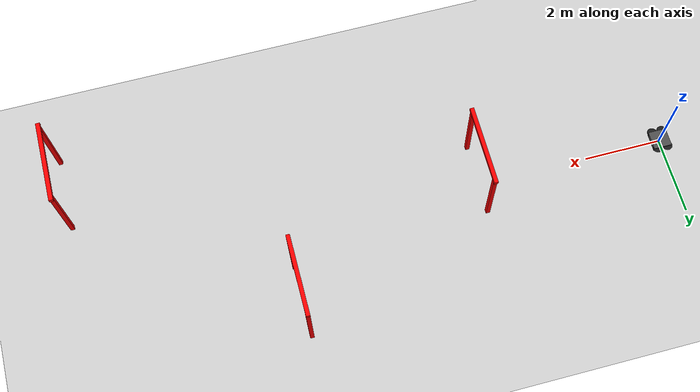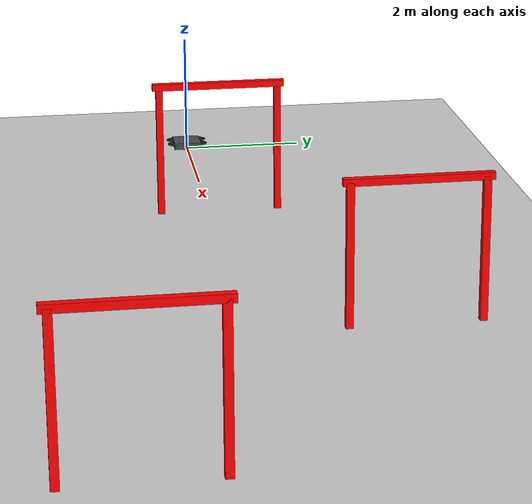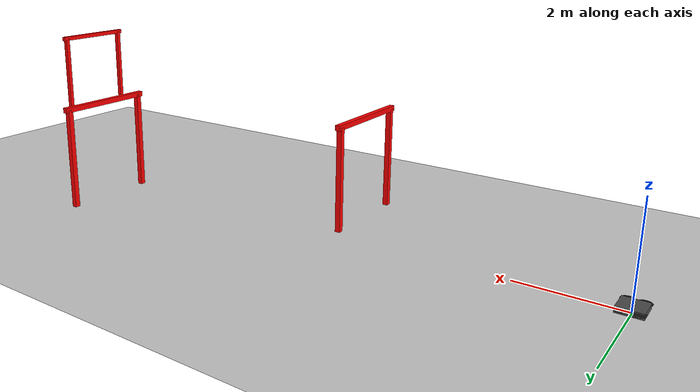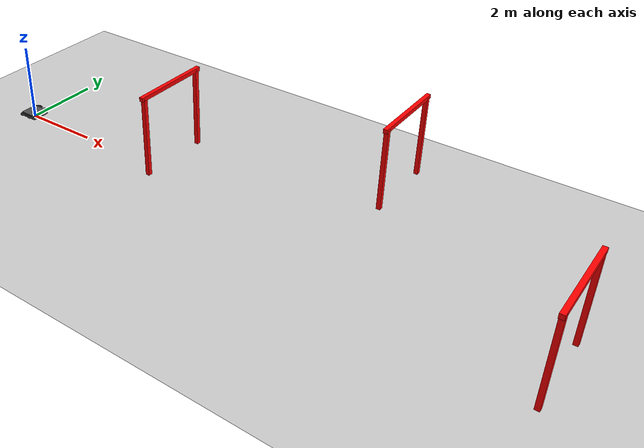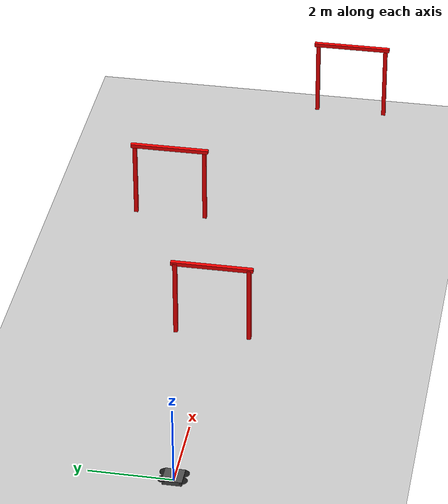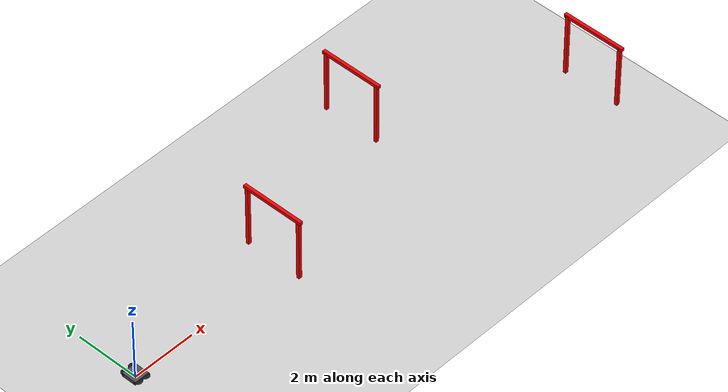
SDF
<?xml version="1.0" ?>
<sdf version="1.9">
  <world name="our_world">

    <physics name="1ms" type="ignored">
      <max_step_size>0.001</max_step_size>
      <real_time_factor>1.0</real_time_factor>
    </physics>

    <plugin filename="gz-sim-physics-system"
            name="gz::sim::systems::Physics"/>
    <plugin filename="gz-sim-scene-broadcaster-system"
            name="gz::sim::systems::SceneBroadcaster"/>
    <plugin filename="gz-sim-user-commands-system"
            name="gz::sim::systems::UserCommands"/>
    <plugin filename="gz-sim-sensors-system"
            name="gz::sim::systems::Sensors">
      <render_engine>ogre2</render_engine>
    </plugin>
    <plugin filename="gz-sim-imu-system"
            name="gz::sim::systems::Imu">
    </plugin>
    <plugin filename="gz-sim-altimeter-system"
            name="gz::sim::systems::Altimeter">
    </plugin>

    <light type="directional" name="sun">
      <pose>0 0 10 0 0 0</pose>
      <diffuse>0.8 0.8 0.8 1</diffuse>
      <specular>0.2 0.2 0.2 1</specular>
      <direction>-0.5 0.1 -0.9</direction>
    </light>

    <model name="ground_plane">
      <static>true</static>
      <link name="link">
        <collision name="collision">
          <geometry>
            <plane><normal>0 0 1</normal><size>100 100</size></plane>
          </geometry>
        </collision>
        <visual name="visual">
          <geometry>
            <plane><normal>0 0 1</normal><size>100 100</size></plane>
          </geometry>
          <material><ambient>0.8 0.8 0.8 1</ambient></material>
        </visual>
      </link>
    </model>

    <!-- Our Custom Drone -->
    <include>
    <uri>file:///home/docuhub/ROS_HACK/drone_urdf/drone.sdf</uri>
      <pose>0 0 0.1 0 0 0</pose>
    </include>

    <!-- Gate 1 - straight ahead -->
    <model name="gate_1">
      <static>true</static>
      <pose>5 0 1.5 0 0 0</pose>
      <link name="link">
        <visual name="left_post">
          <pose>0 0.9 0 0 0 0</pose>
          <geometry><box><size>0.1 0.1 2.0</size></box></geometry>
          <material><ambient>1 0 0 1</ambient></material>
        </visual>
        <visual name="right_post">
          <pose>0 -0.9 0 0 0 0</pose>
          <geometry><box><size>0.1 0.1 2.0</size></box></geometry>
          <material><ambient>1 0 0 1</ambient></material>
        </visual>
        <visual name="top_bar">
          <pose>0 0 1.0 0 0 0</pose>
          <geometry><box><size>0.1 2.0 0.1</size></box></geometry>
          <material><ambient>1 0 0 1</ambient></material>
        </visual>
        <collision name="collision">
          <geometry><box><size>0.1 2.0 2.0</size></box></geometry>
        </collision>
      </link>
    </model>

    <!-- Gate 2 - slightly right -->
    <model name="gate_2">
      <static>true</static>
      <pose>10 2 1.5 0 0 0</pose>
      <link name="link">
        <visual name="left_post">
          <pose>0 0.9 0 0 0 0</pose>
          <geometry><box><size>0.1 0.1 2.0</size></box></geometry>
          <material><ambient>1 0 0 1</ambient></material>
        </visual>
        <visual name="right_post">
          <pose>0 -0.9 0 0 0 0</pose>
          <geometry><box><size>0.1 0.1 2.0</size></box></geometry>
          <material><ambient>1 0 0 1</ambient></material>
        </visual>
        <visual name="top_bar">
          <pose>0 0 1.0 0 0 0</pose>
          <geometry><box><size>0.1 2.0 0.1</size></box></geometry>
          <material><ambient>1 0 0 1</ambient></material>
        </visual>
        <collision name="collision">
          <geometry><box><size>0.1 2.0 2.0</size></box></geometry>
        </collision>
      </link>
    </model>

    <!-- Gate 3 - slightly left and higher -->
    <model name="gate_3">
      <static>true</static>
      <pose>15 -2 2.0 0 0 0</pose>
      <link name="link">
        <visual name="left_post">
          <pose>0 0.9 0 0 0 0</pose>
          <geometry><box><size>0.1 0.1 2.0</size></box></geometry>
          <material><ambient>1 0 0 1</ambient></material>
        </visual>
        <visual name="right_post">
          <pose>0 -0.9 0 0 0 0</pose>
          <geometry><box><size>0.1 0.1 2.0</size></box></geometry>
          <material><ambient>1 0 0 1</ambient></material>
        </visual>
        <visual name="top_bar">
          <pose>0 0 1.0 0 0 0</pose>
          <geometry><box><size>0.1 2.0 0.1</size></box></geometry>
          <material><ambient>1 0 0 1</ambient></material>
        </visual>
        <collision name="collision">
          <geometry><box><size>0.1 2.0 2.0</size></box></geometry>
        </collision>
      </link>
    </model>

  </world>
</sdf>

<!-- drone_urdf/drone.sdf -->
<sdf version="1.9">
  <model name="quadrotor">
    <pose>0 0 0 0 0 0</pose>

    <!-- Main Body -->
    <link name="base_link">
      <pose>0 0 0 0 0 0</pose>
      <inertial>
        <mass>1.5</mass>
        <inertia>
          <ixx>0.0292</ixx>
          <ixy>0</ixy>
          <ixz>0</ixz>
          <iyy>0.0292</iyy>
          <iyz>0</iyz>
          <izz>0.0552</izz>
        </inertia>
      </inertial>
      <visual name="body_visual">
        <geometry>
          <box><size>0.47 0.47 0.11</size></box>
        </geometry>
        <material><ambient>0.3 0.3 0.3 1</ambient></material>
      </visual>
      <collision name="body_collision">
        <geometry>
          <box><size>0.47 0.47 0.11</size></box>
        </geometry>
      </collision>

      <!-- IMU Sensor -->
      <sensor name="imu" type="imu">
        <always_on>1</always_on>
        <update_rate>100</update_rate>
        <topic>/quadrotor/imu</topic>
      </sensor>

      <!-- Front Camera -->
      <sensor name="front_camera" type="camera">
        <pose>0.24 0 0.05 0 0 0</pose>
        <camera>
          <horizontal_fov>1.047</horizontal_fov>
          <image>
            <width>640</width>
            <height>480</height>
          </image>
          <clip>
            <near>0.1</near>
            <far>100</far>
          </clip>
        </camera>
        <always_on>1</always_on>
        <update_rate>30</update_rate>
        <visualize>true</visualize>
        <topic>/quadrotor/front_camera</topic>
      </sensor>
    </link>

    <!-- Rotor 0 - Front Left CCW -->
    <link name="rotor_0">
      <pose>0.13 0.22 0.023 0 0 0</pose>
      <inertial>
        <mass>0.005</mass>
        <inertia>
          <ixx>9.75e-07</ixx>
          <ixy>0</ixy>
          <ixz>0</ixz>
          <iyy>0.000166704</iyy>
          <iyz>0</iyz>
          <izz>0.000167604</izz>
        </inertia>
      </inertial>
      <visual name="rotor_0_visual">
        <geometry>
          <cylinder><radius>0.128</radius><length>0.005</length></cylinder>
        </geometry>
        <material><ambient>0.1 0.1 0.1 1</ambient></material>
      </visual>
    </link>

    <joint name="rotor_0_joint" type="revolute">
      <parent>base_link</parent>
      <child>rotor_0</child>
      <axis>
        <xyz>0 0 1</xyz>
        <limit><lower>-1e+16</lower><upper>1e+16</upper></limit>
        <dynamics><damping>0.004</damping></dynamics>
      </axis>
    </joint>

    <!-- Rotor 1 - Back Left CW -->
    <link name="rotor_1">
      <pose>-0.13 0.22 0.023 0 0 0</pose>
      <inertial>
        <mass>0.005</mass>
        <inertia>
          <ixx>9.75e-07</ixx>
          <ixy>0</ixy>
          <ixz>0</ixz>
          <iyy>0.000166704</iyy>
          <iyz>0</iyz>
          <izz>0.000167604</izz>
        </inertia>
      </inertial>
      <visual name="rotor_1_visual">
        <geometry>
          <cylinder><radius>0.128</radius><length>0.005</length></cylinder>
        </geometry>
        <material><ambient>0.1 0.1 0.1 1</ambient></material>
      </visual>
    </link>

    <joint name="rotor_1_joint" type="revolute">
      <parent>base_link</parent>
      <child>rotor_1</child>
      <axis>
        <xyz>0 0 1</xyz>
        <limit><lower>-1e+16</lower><upper>1e+16</upper></limit>
        <dynamics><damping>0.004</damping></dynamics>
      </axis>
    </joint>

    <!-- Rotor 2 - Back Right CCW -->
    <link name="rotor_2">
      <pose>-0.13 -0.22 0.023 0 0 0</pose>
      <inertial>
        <mass>0.005</mass>
        <inertia>
          <ixx>9.75e-07</ixx>
          <ixy>0</ixy>
          <ixz>0</ixz>
          <iyy>0.000166704</iyy>
          <iyz>0</iyz>
          <izz>0.000167604</izz>
        </inertia>
      </inertial>
      <visual name="rotor_2_visual">
        <geometry>
          <cylinder><radius>0.128</radius><length>0.005</length></cylinder>
        </geometry>
        <material><ambient>0.1 0.1 0.1 1</ambient></material>
      </visual>
    </link>

    <joint name="rotor_2_joint" type="revolute">
      <parent>base_link</parent>
      <child>rotor_2</child>
      <axis>
        <xyz>0 0 1</xyz>
        <limit><lower>-1e+16</lower><upper>1e+16</upper></limit>
        <dynamics><damping>0.004</damping></dynamics>
      </axis>
    </joint>

    <!-- Rotor 3 - Front Right CW -->
    <link name="rotor_3">
      <pose>0.13 -0.22 0.023 0 0 0</pose>
      <inertial>
        <mass>0.005</mass>
        <inertia>
          <ixx>9.75e-07</ixx>
          <ixy>0</ixy>
          <ixz>0</ixz>
          <iyy>0.000166704</iyy>
          <iyz>0</iyz>
          <izz>0.000167604</izz>
        </inertia>
      </inertial>
      <visual name="rotor_3_visual">
        <geometry>
          <cylinder><radius>0.128</radius><length>0.005</length></cylinder>
        </geometry>
        <material><ambient>0.1 0.1 0.1 1</ambient></material>
      </visual>
    </link>

    <joint name="rotor_3_joint" type="revolute">
      <parent>base_link</parent>
      <child>rotor_3</child>
      <axis>
        <xyz>0 0 1</xyz>
        <limit><lower>-1e+16</lower><upper>1e+16</upper></limit>
        <dynamics><damping>0.004</damping></dynamics>
      </axis>
    </joint>

    <!-- Motor Plugins -->
    <plugin filename="gz-sim-multicopter-motor-model-system"
            name="gz::sim::systems::MulticopterMotorModel">
      <jointName>rotor_0_joint</jointName>
      <linkName>rotor_0</linkName>
      <turningDirection>ccw</turningDirection>
      <timeConstantUp>0.0125</timeConstantUp>
      <timeConstantDown>0.025</timeConstantDown>
      <maxRotVelocity>1100</maxRotVelocity>
      <motorConstant>8.54858e-06</motorConstant>
      <momentConstant>0.016</momentConstant>
      <commandSubTopic>command/motor_speed</commandSubTopic>
      <motorNumber>0</motorNumber>
      <rotorDragCoefficient>8.06428e-05</rotorDragCoefficient>
      <rollingMomentCoefficient>1e-06</rollingMomentCoefficient>
      <motorSpeedPubTopic>motor_speed/0</motorSpeedPubTopic>
      <rotorVelocitySlowdownSim>10</rotorVelocitySlowdownSim>
    </plugin>

    <plugin filename="gz-sim-multicopter-motor-model-system"
            name="gz::sim::systems::MulticopterMotorModel">
      <jointName>rotor_1_joint</jointName>
      <linkName>rotor_1</linkName>
      <turningDirection>cw</turningDirection>
      <timeConstantUp>0.0125</timeConstantUp>
      <timeConstantDown>0.025</timeConstantDown>
      <maxRotVelocity>1100</maxRotVelocity>
      <motorConstant>8.54858e-06</motorConstant>
      <momentConstant>0.016</momentConstant>
      <commandSubTopic>command/motor_speed</commandSubTopic>
      <motorNumber>1</motorNumber>
      <rotorDragCoefficient>8.06428e-05</rotorDragCoefficient>
      <rollingMomentCoefficient>1e-06</rollingMomentCoefficient>
      <motorSpeedPubTopic>motor_speed/1</motorSpeedPubTopic>
      <rotorVelocitySlowdownSim>10</rotorVelocitySlowdownSim>
    </plugin>

    <plugin filename="gz-sim-multicopter-motor-model-system"
            name="gz::sim::systems::MulticopterMotorModel">
      <jointName>rotor_2_joint</jointName>
      <linkName>rotor_2</linkName>
      <turningDirection>ccw</turningDirection>
      <timeConstantUp>0.0125</timeConstantUp>
      <timeConstantDown>0.025</timeConstantDown>
      <maxRotVelocity>1100</maxRotVelocity>
      <motorConstant>8.54858e-06</motorConstant>
      <momentConstant>0.016</momentConstant>
      <commandSubTopic>command/motor_speed</commandSubTopic>
      <motorNumber>2</motorNumber>
      <rotorDragCoefficient>8.06428e-05</rotorDragCoefficient>
      <rollingMomentCoefficient>1e-06</rollingMomentCoefficient>
      <motorSpeedPubTopic>motor_speed/2</motorSpeedPubTopic>
      <rotorVelocitySlowdownSim>10</rotorVelocitySlowdownSim>
    </plugin>

    <plugin filename="gz-sim-multicopter-motor-model-system"
            name="gz::sim::systems::MulticopterMotorModel">
      <jointName>rotor_3_joint</jointName>
      <linkName>rotor_3</linkName>
      <turningDirection>cw</turningDirection>
      <timeConstantUp>0.0125</timeConstantUp>
      <timeConstantDown>0.025</timeConstantDown>
      <maxRotVelocity>1100</maxRotVelocity>
      <motorConstant>8.54858e-06</motorConstant>
      <momentConstant>0.016</momentConstant>
      <commandSubTopic>command/motor_speed</commandSubTopic>
      <motorNumber>3</motorNumber>
      <rotorDragCoefficient>8.06428e-05</rotorDragCoefficient>
      <rollingMomentCoefficient>1e-06</rollingMomentCoefficient>
      <motorSpeedPubTopic>motor_speed/3</motorSpeedPubTopic>
      <rotorVelocitySlowdownSim>10</rotorVelocitySlowdownSim>
    </plugin>

  </model>
</sdf>
